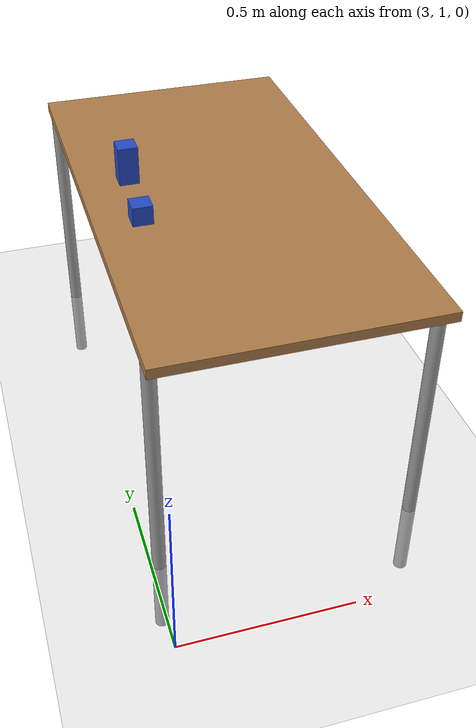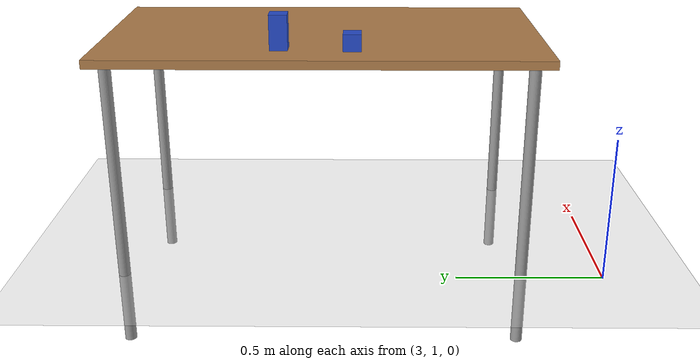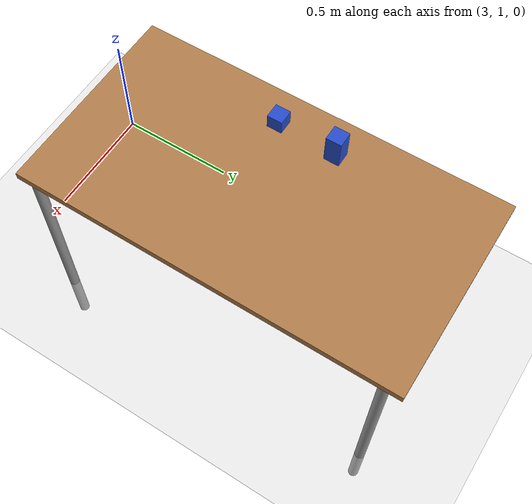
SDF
<sdf version="1.6">
 <world name="default">
  <model name="ground_plane">
   <static>1</static>
   <link name="link">
    <collision name="collision">
     <geometry><plane><normal>0 0 1</normal><size>100 100</size></plane></geometry>
     <surface>
      <contact><collide_bitmask>65535</collide_bitmask></contact>
      <friction><ode><mu>100</mu><mu2>50</mu2></ode></friction>
     </surface>
    </collision>
    <visual name="visual">
     <cast_shadows>0</cast_shadows>
     <geometry><plane><normal>0 0 1</normal><size>100 100</size></plane></geometry>
     <material>
      <script><uri>file://media/materials/scripts/gazebo.material</uri><name>Gazebo/Grey</name></script>
     </material>
    </visual>
   </link>
  </model>
  <model name="demo_cube_0">
   <static>0</static>
   <link name="link">
    <inertial>
     <mass>0.25</mass>
     <inertia><ixx>0.001</ixx><ixy>0</ixy><ixz>0</ixz><iyy>0.001</iyy><iyz>0</iyz><izz>0.001</izz></inertia>
    </inertial>
    <collision name="collision">
     <geometry><box><size>0.06 0.06 0.06</size></box></geometry>
     <surface>
      <friction><ode><mu>30</mu><mu2>30</mu2></ode></friction>
      <contact><ode><kp>1e+06</kp><kd>100</kd><max_vel>1</max_vel><min_depth>0.002</min_depth></ode></contact>
     </surface>
    </collision>
    <visual name="visual">
     <geometry><box><size>0.06 0.06 0.06</size></box></geometry>
     <material>
      <script><uri>file://media/materials/scripts/gazebo.material</uri><name>Gazebo/Blue</name></script>
     </material>
    </visual>
    <velocity_decay><linear>0</linear><angular>0</angular></velocity_decay>
   </link>
   <pose>3.13949 1.85464 0.787714 0 -0 0</pose>
  </model>
  <model name="table">
   <static>1</static>
   <link name="link">
    <collision name="surface">
     <pose>0 0 1 0 -0 0</pose>
     <geometry><box><size>1.5 0.8 0.03</size></box></geometry>
     <surface><friction><ode><mu>0.6</mu><mu2>0.6</mu2></ode></friction></surface>
    </collision>
    <visual name="visual1">
     <pose>0 0 1 0 -0 0</pose>
     <geometry><box><size>1.5 0.8 0.03</size></box></geometry>
     <material>
      <script><uri>file://media/materials/scripts/gazebo.material</uri><name>Gazebo/Wood</name></script>
     </material>
    </visual>
    <collision name="front_left_leg">
     <pose>0.68 0.38 0.5 0 -0 0</pose>
     <geometry><cylinder><radius>0.02</radius><length>1</length></cylinder></geometry>
    </collision>
    <visual name="front_left_leg">
     <pose>0.68 0.38 0.5 0 -0 0</pose>
     <geometry><cylinder><radius>0.02</radius><length>1</length></cylinder></geometry>
     <material>
      <script><uri>file://media/materials/scripts/gazebo.material</uri><name>Gazebo/Grey</name></script>
     </material>
    </visual>
    <collision name="front_right_leg">
     <pose>0.68 -0.38 0.5 0 -0 0</pose>
     <geometry><cylinder><radius>0.02</radius><length>1</length></cylinder></geometry>
    </collision>
    <visual name="front_right_leg">
     <pose>0.68 -0.38 0.5 0 -0 0</pose>
     <geometry><cylinder><radius>0.02</radius><length>1</length></cylinder></geometry>
     <material>
      <script><uri>file://media/materials/scripts/gazebo.material</uri><name>Gazebo/Grey</name></script>
     </material>
    </visual>
    <collision name="back_right_leg">
     <pose>-0.68 -0.38 0.5 0 -0 0</pose>
     <geometry><cylinder><radius>0.02</radius><length>1</length></cylinder></geometry>
    </collision>
    <visual name="back_right_leg">
     <pose>-0.68 -0.38 0.5 0 -0 0</pose>
     <geometry><cylinder><radius>0.02</radius><length>1</length></cylinder></geometry>
     <material>
      <script><uri>file://media/materials/scripts/gazebo.material</uri><name>Gazebo/Grey</name></script>
     </material>
    </visual>
    <collision name="back_left_leg">
     <pose>-0.68 0.38 0.5 0 -0 0</pose>
     <geometry><cylinder><radius>0.02</radius><length>1</length></cylinder></geometry>
    </collision>
    <visual name="back_left_leg">
     <pose>-0.68 0.38 0.5 0 -0 0</pose>
     <geometry><cylinder><radius>0.02</radius><length>1</length></cylinder></geometry>
     <material>
      <script><uri>file://media/materials/scripts/gazebo.material</uri><name>Gazebo/Grey</name></script>
     </material>
    </visual>
   </link>
   <pose>3.40332 1.95655 -0.255285 0 -0 1.5708</pose>
  </model>
  <model name="demo_rectangle">
   <link name="link">
    <inertial>
     <mass>0.25</mass>
     <inertia><ixx>0.001</ixx><ixy>0</ixy><ixz>0</ixz><iyy>0.001</iyy><iyz>0</iyz><izz>0.001</izz></inertia>
    </inertial>
    <velocity_decay><linear>0</linear><angular>0</angular></velocity_decay>
    <visual name="visual">
     <geometry><box><size>0.06 0.06 0.12</size></box></geometry>
     <material>
      <script><uri>file://media/materials/scripts/gazebo.material</uri><name>Gazebo/Blue</name></script>
      <shader type="vertex"><normal_map>__default__</normal_map></shader>
      <ambient>0 0 1 1</ambient>
      <diffuse>0 0 1 1</diffuse>
      <specular>0.1 0.1 0.1 1</specular>
      <emissive>0 0 0 1</emissive>
     </material>
    </visual>
    <collision name="collision">
     <geometry><box><size>0.06 0.06 0.12</size></box></geometry>
     <surface>
      <friction>
       <ode><mu>30</mu><mu2>30</mu2><fdir1>0 0 0</fdir1><slip1>0</slip1><slip2>0</slip2></ode>
       <torsional>
        <coefficient>1</coefficient>
        <patch_radius>0</patch_radius>
        <surface_radius>0</surface_radius>
        <use_patch_radius>1</use_patch_radius>
        <ode><slip>0</slip></ode>
       </torsional>
      </friction>
      <bounce><restitution_coefficient>0</restitution_coefficient><threshold>1e+06</threshold></bounce>
      <contact>
       <collide_without_contact>0</collide_without_contact>
       <collide_without_contact_bitmask>1</collide_without_contact_bitmask>
       <collide_bitmask>1</collide_bitmask>
       <ode>
        <soft_cfm>0</soft_cfm>
        <soft_erp>0.2</soft_erp>
        <kp>1e+06</kp>
        <kd>100</kd>
        <max_vel>1</max_vel>
        <min_depth>0.002</min_depth>
       </ode>
       <bullet>
        <split_impulse>1</split_impulse>
        <split_impulse_penetration_threshold>-0.01</split_impulse_penetration_threshold>
        <soft_cfm>0</soft_cfm>
        <soft_erp>0.2</soft_erp>
        <kp>1e+06</kp>
        <kd>100</kd>
       </bullet>
      </contact>
     </surface>
    </collision>
   </link>
   <static>0</static>
   <pose>3.15233 2.09367 0.817714 0 -0 0</pose>
  </model>
 </world>
</sdf>
